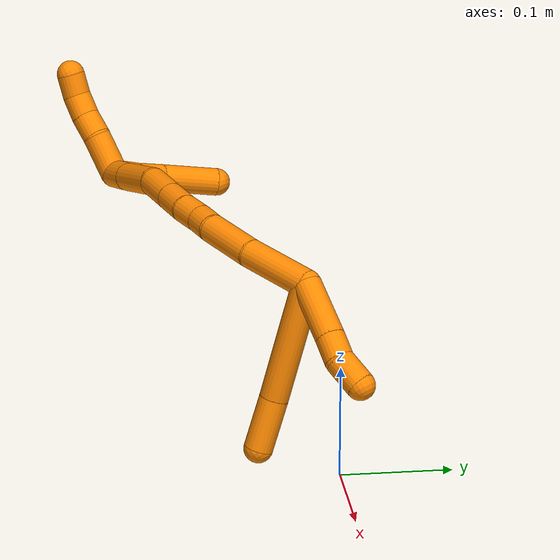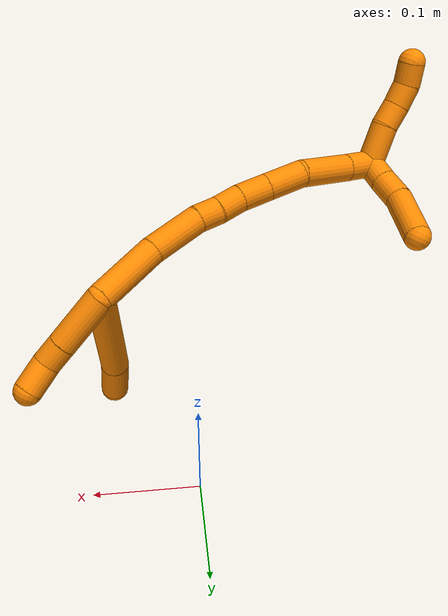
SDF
<sdf version="1.7">
 <world name="default">
  <model name="19">
   <static>0</static>
   <link name="19">
    <collision name="collision-cylinder-e_1_2_8">
     <pose>-0.026592 -0.031425 -0.031745 2.36127 -0.536967 -1.17924</pose>
     <geometry><cylinder><radius>0.0125</radius><length>0.103968</length></cylinder></geometry>
     <surface>
      <friction><ode><mu>1.16</mu><mu2>1.16</mu2><slip1>0</slip1><slip2>0</slip2></ode></friction>
      <contact><ode><kp>1e+06</kp><kd>1</kd><max_vel>0</max_vel><min_depth>0.001</min_depth></ode></contact>
     </surface>
    </collision>
    <visual name="visual-cylinder-e_1_2_8">
     <pose>-0.026592 -0.031425 -0.031745 2.36127 -0.536967 -1.17924</pose>
     <geometry><cylinder><radius>0.0125</radius><length>0.103968</length></cylinder></geometry>
     <material><ambient>0.996078 0.537255 0 1</ambient></material>
    </visual>
    <collision name="collision-cylinder-e_2_8_6">
     <pose>-0.06249 -0.077982 -0.078123 2.3394 -0.416268 -0.924083</pose>
     <geometry><cylinder><radius>0.0125</radius><length>0.046032</length></cylinder></geometry>
     <surface>
      <friction><ode><mu>1.16</mu><mu2>1.16</mu2><slip1>0</slip1><slip2>0</slip2></ode></friction>
      <contact><ode><kp>1e+06</kp><kd>1</kd><max_vel>0</max_vel><min_depth>0.001</min_depth></ode></contact>
     </surface>
    </collision>
    <visual name="visual-cylinder-e_2_8_6">
     <pose>-0.06249 -0.077982 -0.078123 2.3394 -0.416268 -0.924083</pose>
     <geometry><cylinder><radius>0.0125</radius><length>0.046032</length></cylinder></geometry>
     <material><ambient>0.996078 0.537255 0 1</ambient></material>
    </visual>
    <collision name="collision-cylinder-e_1_2_9">
     <pose>0.005661 -0.003075 -0.024626 3.01737 0.224253 2.13231</pose>
     <geometry><cylinder><radius>0.0125</radius><length>0.05091</length></cylinder></geometry>
     <surface>
      <friction><ode><mu>1.16</mu><mu2>1.16</mu2><slip1>0</slip1><slip2>0</slip2></ode></friction>
      <contact><ode><kp>1e+06</kp><kd>1</kd><max_vel>0</max_vel><min_depth>0.001</min_depth></ode></contact>
     </surface>
    </collision>
    <visual name="visual-cylinder-e_1_2_9">
     <pose>0.005661 -0.003075 -0.024626 3.01737 0.224253 2.13231</pose>
     <geometry><cylinder><radius>0.0125</radius><length>0.05091</length></cylinder></geometry>
     <material><ambient>0.996078 0.537255 0 1</ambient></material>
    </visual>
    <collision name="collision-cylinder-e_2_9_10">
     <pose>0.013673 -0.007772 -0.059679 2.98723 0.219288 1.91677</pose>
     <geometry><cylinder><radius>0.0125</radius><length>0.021621</length></cylinder></geometry>
     <surface>
      <friction><ode><mu>1.16</mu><mu2>1.16</mu2><slip1>0</slip1><slip2>0</slip2></ode></friction>
      <contact><ode><kp>1e+06</kp><kd>1</kd><max_vel>0</max_vel><min_depth>0.001</min_depth></ode></contact>
     </surface>
    </collision>
    <visual name="visual-cylinder-e_2_9_10">
     <pose>0.013673 -0.007772 -0.059679 2.98723 0.219288 1.91677</pose>
     <geometry><cylinder><radius>0.0125</radius><length>0.021621</length></cylinder></geometry>
     <material><ambient>0.996078 0.537255 0 1</ambient></material>
    </visual>
    <collision name="collision-cylinder-e_3_10_5">
     <pose>0.018812 -0.007293 -0.083388 -2.9847 0.204359 -1.83349</pose>
     <geometry><cylinder><radius>0.0125</radius><length>0.027469</length></cylinder></geometry>
     <surface>
      <friction><ode><mu>1.16</mu><mu2>1.16</mu2><slip1>0</slip1><slip2>0</slip2></ode></friction>
      <contact><ode><kp>1e+06</kp><kd>1</kd><max_vel>0</max_vel><min_depth>0.001</min_depth></ode></contact>
     </surface>
    </collision>
    <visual name="visual-cylinder-e_3_10_5">
     <pose>0.018812 -0.007293 -0.083388 -2.9847 0.204359 -1.83349</pose>
     <geometry><cylinder><radius>0.0125</radius><length>0.027469</length></cylinder></geometry>
     <material><ambient>0.996078 0.537255 0 1</ambient></material>
    </visual>
    <collision name="collision-cylinder-e_1_2_11">
     <pose>-0.014686 -0.012222 0.024975 0.455095 -0.485929 -0.114663</pose>
     <geometry><cylinder><radius>0.0125</radius><length>0.06289</length></cylinder></geometry>
     <surface>
      <friction><ode><mu>1.16</mu><mu2>1.16</mu2><slip1>0</slip1><slip2>0</slip2></ode></friction>
      <contact><ode><kp>1e+06</kp><kd>1</kd><max_vel>0</max_vel><min_depth>0.001</min_depth></ode></contact>
     </surface>
    </collision>
    <visual name="visual-cylinder-e_1_2_11">
     <pose>-0.014686 -0.012222 0.024975 0.455095 -0.485929 -0.114663</pose>
     <geometry><cylinder><radius>0.0125</radius><length>0.06289</length></cylinder></geometry>
     <material><ambient>0.996078 0.537255 0 1</ambient></material>
    </visual>
    <collision name="collision-cylinder-e_2_11_12">
     <pose>-0.043702 -0.031589 0.069519 0.350089 -0.602528 -0.109795</pose>
     <geometry><cylinder><radius>0.0125</radius><length>0.050572</length></cylinder></geometry>
     <surface>
      <friction><ode><mu>1.16</mu><mu2>1.16</mu2><slip1>0</slip1><slip2>0</slip2></ode></friction>
      <contact><ode><kp>1e+06</kp><kd>1</kd><max_vel>0</max_vel><min_depth>0.001</min_depth></ode></contact>
     </surface>
    </collision>
    <visual name="visual-cylinder-e_2_11_12">
     <pose>-0.043702 -0.031589 0.069519 0.350089 -0.602528 -0.109795</pose>
     <geometry><cylinder><radius>0.0125</radius><length>0.050572</length></cylinder></geometry>
     <material><ambient>0.996078 0.537255 0 1</ambient></material>
    </visual>
    <collision name="collision-cylinder-e_3_12_13">
     <pose>-0.065488 -0.040204 0.096392 0.198667 -0.785863 -0.082569</pose>
     <geometry><cylinder><radius>0.0125</radius><length>0.02108</length></cylinder></geometry>
     <surface>
      <friction><ode><mu>1.16</mu><mu2>1.16</mu2><slip1>0</slip1><slip2>0</slip2></ode></friction>
      <contact><ode><kp>1e+06</kp><kd>1</kd><max_vel>0</max_vel><min_depth>0.001</min_depth></ode></contact>
     </surface>
    </collision>
    <visual name="visual-cylinder-e_3_12_13">
     <pose>-0.065488 -0.040204 0.096392 0.198667 -0.785863 -0.082569</pose>
     <geometry><cylinder><radius>0.0125</radius><length>0.02108</length></cylinder></geometry>
     <material><ambient>0.996078 0.537255 0 1</ambient></material>
    </visual>
    <collision name="collision-cylinder-e_4_13_14">
     <pose>-0.080312 -0.044435 0.112257 0.311832 -0.686182 -0.112186</pose>
     <geometry><cylinder><radius>0.0125</radius><length>0.023257</length></cylinder></geometry>
     <surface>
      <friction><ode><mu>1.16</mu><mu2>1.16</mu2><slip1>0</slip1><slip2>0</slip2></ode></friction>
      <contact><ode><kp>1e+06</kp><kd>1</kd><max_vel>0</max_vel><min_depth>0.001</min_depth></ode></contact>
     </surface>
    </collision>
    <visual name="visual-cylinder-e_4_13_14">
     <pose>-0.080312 -0.044435 0.112257 0.311832 -0.686182 -0.112186</pose>
     <geometry><cylinder><radius>0.0125</radius><length>0.023257</length></cylinder></geometry>
     <material><ambient>0.996078 0.537255 0 1</ambient></material>
    </visual>
    <collision name="collision-cylinder-e_5_14_15">
     <pose>-0.097689 -0.048852 0.130353 0.17213 -0.802327 -0.07316</pose>
     <geometry><cylinder><radius>0.0125</radius><length>0.027843</length></cylinder></geometry>
     <surface>
      <friction><ode><mu>1.16</mu><mu2>1.16</mu2><slip1>0</slip1><slip2>0</slip2></ode></friction>
      <contact><ode><kp>1e+06</kp><kd>1</kd><max_vel>0</max_vel><min_depth>0.001</min_depth></ode></contact>
     </surface>
    </collision>
    <visual name="visual-cylinder-e_5_14_15">
     <pose>-0.097689 -0.048852 0.130353 0.17213 -0.802327 -0.07316</pose>
     <geometry><cylinder><radius>0.0125</radius><length>0.027843</length></cylinder></geometry>
     <material><ambient>0.996078 0.537255 0 1</ambient></material>
    </visual>
    <collision name="collision-cylinder-e_6_15_16">
     <pose>-0.120704 -0.05255 0.152198 0.164258 -0.80603 -0.070161</pose>
     <geometry><cylinder><radius>0.0125</radius><length>0.036049</length></cylinder></geometry>
     <surface>
      <friction><ode><mu>1.16</mu><mu2>1.16</mu2><slip1>0</slip1><slip2>0</slip2></ode></friction>
      <contact><ode><kp>1e+06</kp><kd>1</kd><max_vel>0</max_vel><min_depth>0.001</min_depth></ode></contact>
     </surface>
    </collision>
    <visual name="visual-cylinder-e_6_15_16">
     <pose>-0.120704 -0.05255 0.152198 0.164258 -0.80603 -0.070161</pose>
     <geometry><cylinder><radius>0.0125</radius><length>0.036049</length></cylinder></geometry>
     <material><ambient>0.996078 0.537255 0 1</ambient></material>
    </visual>
    <collision name="collision-cylinder-e_7_16_17">
     <pose>-0.154875 -0.061061 0.176146 0.50743 -1.0093 -0.284518</pose>
     <geometry><cylinder><radius>0.0125</radius><length>0.05001</length></cylinder></geometry>
     <surface>
      <friction><ode><mu>1.16</mu><mu2>1.16</mu2><slip1>0</slip1><slip2>0</slip2></ode></friction>
      <contact><ode><kp>1e+06</kp><kd>1</kd><max_vel>0</max_vel><min_depth>0.001</min_depth></ode></contact>
     </surface>
    </collision>
    <visual name="visual-cylinder-e_7_16_17">
     <pose>-0.154875 -0.061061 0.176146 0.50743 -1.0093 -0.284518</pose>
     <geometry><cylinder><radius>0.0125</radius><length>0.05001</length></cylinder></geometry>
     <material><ambient>0.996078 0.537255 0 1</ambient></material>
    </visual>
    <collision name="collision-cylinder-e_8_17_1">
     <pose>-0.18788 -0.070985 0.194719 0.462029 -0.991259 -0.252975</pose>
     <geometry><cylinder><radius>0.0125</radius><length>0.028298</length></cylinder></geometry>
     <surface>
      <friction><ode><mu>1.16</mu><mu2>1.16</mu2><slip1>0</slip1><slip2>0</slip2></ode></friction>
      <contact><ode><kp>1e+06</kp><kd>1</kd><max_vel>0</max_vel><min_depth>0.001</min_depth></ode></contact>
     </surface>
    </collision>
    <visual name="visual-cylinder-e_8_17_1">
     <pose>-0.18788 -0.070985 0.194719 0.462029 -0.991259 -0.252975</pose>
     <geometry><cylinder><radius>0.0125</radius><length>0.028298</length></cylinder></geometry>
     <material><ambient>0.996078 0.537255 0 1</ambient></material>
    </visual>
    <collision name="collision-cylinder-e_1_1_18">
     <pose>-0.197367 -0.073618 0.220121 -0.044391 0.126565 -0.002813</pose>
     <geometry><cylinder><radius>0.0125</radius><length>0.037267</length></cylinder></geometry>
     <surface>
      <friction><ode><mu>1.16</mu><mu2>1.16</mu2><slip1>0</slip1><slip2>0</slip2></ode></friction>
      <contact><ode><kp>1e+06</kp><kd>1</kd><max_vel>0</max_vel><min_depth>0.001</min_depth></ode></contact>
     </surface>
    </collision>
    <visual name="visual-cylinder-e_1_1_18">
     <pose>-0.197367 -0.073618 0.220121 -0.044391 0.126565 -0.002813</pose>
     <geometry><cylinder><radius>0.0125</radius><length>0.037267</length></cylinder></geometry>
     <material><ambient>0.996078 0.537255 0 1</ambient></material>
    </visual>
    <collision name="collision-cylinder-e_2_18_19">
     <pose>-0.195882 -0.072797 0.249147 -0.000133 -0.081885 5e-06</pose>
     <geometry><cylinder><radius>0.0125</radius><length>0.021191</length></cylinder></geometry>
     <surface>
      <friction><ode><mu>1.16</mu><mu2>1.16</mu2><slip1>0</slip1><slip2>0</slip2></ode></friction>
      <contact><ode><kp>1e+06</kp><kd>1</kd><max_vel>0</max_vel><min_depth>0.001</min_depth></ode></contact>
     </surface>
    </collision>
    <visual name="visual-cylinder-e_2_18_19">
     <pose>-0.195882 -0.072797 0.249147 -0.000133 -0.081885 5e-06</pose>
     <geometry><cylinder><radius>0.0125</radius><length>0.021191</length></cylinder></geometry>
     <material><ambient>0.996078 0.537255 0 1</ambient></material>
    </visual>
    <collision name="collision-cylinder-e_3_19_20">
     <pose>-0.196348 -0.071788 0.270182 -0.095843 0.037984 -0.001822</pose>
     <geometry><cylinder><radius>0.0125</radius><length>0.021061</length></cylinder></geometry>
     <surface>
      <friction><ode><mu>1.16</mu><mu2>1.16</mu2><slip1>0</slip1><slip2>0</slip2></ode></friction>
      <contact><ode><kp>1e+06</kp><kd>1</kd><max_vel>0</max_vel><min_depth>0.001</min_depth></ode></contact>
     </surface>
    </collision>
    <visual name="visual-cylinder-e_3_19_20">
     <pose>-0.196348 -0.071788 0.270182 -0.095843 0.037984 -0.001822</pose>
     <geometry><cylinder><radius>0.0125</radius><length>0.021061</length></cylinder></geometry>
     <material><ambient>0.996078 0.537255 0 1</ambient></material>
    </visual>
    <collision name="collision-cylinder-e_4_20_4">
     <pose>-0.192381 -0.068834 0.290056 -0.204338 0.355873 -0.036872</pose>
     <geometry><cylinder><radius>0.0125</radius><length>0.020481</length></cylinder></geometry>
     <surface>
      <friction><ode><mu>1.16</mu><mu2>1.16</mu2><slip1>0</slip1><slip2>0</slip2></ode></friction>
      <contact><ode><kp>1e+06</kp><kd>1</kd><max_vel>0</max_vel><min_depth>0.001</min_depth></ode></contact>
     </surface>
    </collision>
    <visual name="visual-cylinder-e_4_20_4">
     <pose>-0.192381 -0.068834 0.290056 -0.204338 0.355873 -0.036872</pose>
     <geometry><cylinder><radius>0.0125</radius><length>0.020481</length></cylinder></geometry>
     <material><ambient>0.996078 0.537255 0 1</ambient></material>
    </visual>
    <collision name="collision-cylinder-e_1_1_21">
     <pose>-0.205564 -0.065399 0.196766 -2.06662 -0.517132 0.835303</pose>
     <geometry><cylinder><radius>0.0125</radius><length>0.023646</length></cylinder></geometry>
     <surface>
      <friction><ode><mu>1.16</mu><mu2>1.16</mu2><slip1>0</slip1><slip2>0</slip2></ode></friction>
      <contact><ode><kp>1e+06</kp><kd>1</kd><max_vel>0</max_vel><min_depth>0.001</min_depth></ode></contact>
     </surface>
    </collision>
    <visual name="visual-cylinder-e_1_1_21">
     <pose>-0.205564 -0.065399 0.196766 -2.06662 -0.517132 0.835303</pose>
     <geometry><cylinder><radius>0.0125</radius><length>0.023646</length></cylinder></geometry>
     <material><ambient>0.996078 0.537255 0 1</ambient></material>
    </visual>
    <collision name="collision-cylinder-e_2_21_22">
     <pose>-0.21736 -0.046076 0.187242 -1.99419 -0.485432 0.731805</pose>
     <geometry><cylinder><radius>0.0125</radius><length>0.025508</length></cylinder></geometry>
     <surface>
      <friction><ode><mu>1.16</mu><mu2>1.16</mu2><slip1>0</slip1><slip2>0</slip2></ode></friction>
      <contact><ode><kp>1e+06</kp><kd>1</kd><max_vel>0</max_vel><min_depth>0.001</min_depth></ode></contact>
     </surface>
    </collision>
    <visual name="visual-cylinder-e_2_21_22">
     <pose>-0.21736 -0.046076 0.187242 -1.99419 -0.485432 0.731805</pose>
     <geometry><cylinder><radius>0.0125</radius><length>0.025508</length></cylinder></geometry>
     <material><ambient>0.996078 0.537255 0 1</ambient></material>
    </visual>
    <collision name="collision-cylinder-e_3_22_3">
     <pose>-0.228588 -0.014131 0.170387 -2.08444 -0.209101 0.355564</pose>
     <geometry><cylinder><radius>0.0125</radius><length>0.050846</length></cylinder></geometry>
     <surface>
      <friction><ode><mu>1.16</mu><mu2>1.16</mu2><slip1>0</slip1><slip2>0</slip2></ode></friction>
      <contact><ode><kp>1e+06</kp><kd>1</kd><max_vel>0</max_vel><min_depth>0.001</min_depth></ode></contact>
     </surface>
    </collision>
    <visual name="visual-cylinder-e_3_22_3">
     <pose>-0.228588 -0.014131 0.170387 -2.08444 -0.209101 0.355564</pose>
     <geometry><cylinder><radius>0.0125</radius><length>0.050846</length></cylinder></geometry>
     <material><ambient>0.996078 0.537255 0 1</ambient></material>
    </visual>
    <collision name="collision-sphere-3">
     <pose>-0.233866 0.007529 0.158168 0 -0 0</pose>
     <geometry><sphere><radius>0.0125</radius></sphere></geometry>
     <surface>
      <friction><ode><mu>1.16</mu><mu2>1.16</mu2><slip1>0</slip1><slip2>0</slip2></ode></friction>
      <contact><ode><kp>1e+06</kp><kd>1</kd><max_vel>0</max_vel><min_depth>0.001</min_depth></ode></contact>
     </surface>
    </collision>
    <visual name="visual-sphere-3">
     <pose>-0.233866 0.007529 0.158168 0 -0 0</pose>
     <geometry><sphere><radius>0.0125</radius></sphere></geometry>
     <material><ambient>0.996078 0.537255 0 1</ambient></material>
    </visual>
    <collision name="collision-sphere-22">
     <pose>-0.223311 -0.035791 0.182607 0 -0 0</pose>
     <geometry><sphere><radius>0.0125</radius></sphere></geometry>
     <surface>
      <friction><ode><mu>1.16</mu><mu2>1.16</mu2><slip1>0</slip1><slip2>0</slip2></ode></friction>
      <contact><ode><kp>1e+06</kp><kd>1</kd><max_vel>0</max_vel><min_depth>0.001</min_depth></ode></contact>
     </surface>
    </collision>
    <visual name="visual-sphere-22">
     <pose>-0.223311 -0.035791 0.182607 0 -0 0</pose>
     <geometry><sphere><radius>0.0125</radius></sphere></geometry>
     <material><ambient>0.996078 0.537255 0 1</ambient></material>
    </visual>
    <collision name="collision-sphere-21">
     <pose>-0.211409 -0.05636 0.191877 0 -0 0</pose>
     <geometry><sphere><radius>0.0125</radius></sphere></geometry>
     <surface>
      <friction><ode><mu>1.16</mu><mu2>1.16</mu2><slip1>0</slip1><slip2>0</slip2></ode></friction>
      <contact><ode><kp>1e+06</kp><kd>1</kd><max_vel>0</max_vel><min_depth>0.001</min_depth></ode></contact>
     </surface>
    </collision>
    <visual name="visual-sphere-21">
     <pose>-0.211409 -0.05636 0.191877 0 -0 0</pose>
     <geometry><sphere><radius>0.0125</radius></sphere></geometry>
     <material><ambient>0.996078 0.537255 0 1</ambient></material>
    </visual>
    <collision name="collision-sphere-4">
     <pose>-0.188813 -0.066886 0.299455 0 -0 0</pose>
     <geometry><sphere><radius>0.0125</radius></sphere></geometry>
     <surface>
      <friction><ode><mu>1.16</mu><mu2>1.16</mu2><slip1>0</slip1><slip2>0</slip2></ode></friction>
      <contact><ode><kp>1e+06</kp><kd>1</kd><max_vel>0</max_vel><min_depth>0.001</min_depth></ode></contact>
     </surface>
    </collision>
    <visual name="visual-sphere-4">
     <pose>-0.188813 -0.066886 0.299455 0 -0 0</pose>
     <geometry><sphere><radius>0.0125</radius></sphere></geometry>
     <material><ambient>0.996078 0.537255 0 1</ambient></material>
    </visual>
    <collision name="collision-sphere-20">
     <pose>-0.195948 -0.070781 0.280657 0 -0 0</pose>
     <geometry><sphere><radius>0.0125</radius></sphere></geometry>
     <surface>
      <friction><ode><mu>1.16</mu><mu2>1.16</mu2><slip1>0</slip1><slip2>0</slip2></ode></friction>
      <contact><ode><kp>1e+06</kp><kd>1</kd><max_vel>0</max_vel><min_depth>0.001</min_depth></ode></contact>
     </surface>
    </collision>
    <visual name="visual-sphere-20">
     <pose>-0.195948 -0.070781 0.280657 0 -0 0</pose>
     <geometry><sphere><radius>0.0125</radius></sphere></geometry>
     <material><ambient>0.996078 0.537255 0 1</ambient></material>
    </visual>
    <collision name="collision-sphere-5">
     <pose>0.021599 -0.005192 -0.096672 0 -0 0</pose>
     <geometry><sphere><radius>0.0125</radius></sphere></geometry>
     <surface>
      <friction><ode><mu>1.16</mu><mu2>1.16</mu2><slip1>0</slip1><slip2>0</slip2></ode></friction>
      <contact><ode><kp>1e+06</kp><kd>1</kd><max_vel>0</max_vel><min_depth>0.001</min_depth></ode></contact>
     </surface>
    </collision>
    <visual name="visual-sphere-5">
     <pose>0.021599 -0.005192 -0.096672 0 -0 0</pose>
     <geometry><sphere><radius>0.0125</radius></sphere></geometry>
     <material><ambient>0.996078 0.537255 0 1</ambient></material>
    </visual>
    <collision name="collision-sphere-10">
     <pose>0.016024 -0.009395 -0.070105 0 -0 0</pose>
     <geometry><sphere><radius>0.0125</radius></sphere></geometry>
     <surface>
      <friction><ode><mu>1.16</mu><mu2>1.16</mu2><slip1>0</slip1><slip2>0</slip2></ode></friction>
      <contact><ode><kp>1e+06</kp><kd>1</kd><max_vel>0</max_vel><min_depth>0.001</min_depth></ode></contact>
     </surface>
    </collision>
    <visual name="visual-sphere-10">
     <pose>0.016024 -0.009395 -0.070105 0 -0 0</pose>
     <geometry><sphere><radius>0.0125</radius></sphere></geometry>
     <material><ambient>0.996078 0.537255 0 1</ambient></material>
    </visual>
    <collision name="collision-sphere-6">
     <pose>-0.071796 -0.093115 -0.092755 0 -0 0</pose>
     <geometry><sphere><radius>0.0125</radius></sphere></geometry>
     <surface>
      <friction><ode><mu>1.16</mu><mu2>1.16</mu2><slip1>0</slip1><slip2>0</slip2></ode></friction>
      <contact><ode><kp>1e+06</kp><kd>1</kd><max_vel>0</max_vel><min_depth>0.001</min_depth></ode></contact>
     </surface>
    </collision>
    <visual name="visual-sphere-6">
     <pose>-0.071796 -0.093115 -0.092755 0 -0 0</pose>
     <geometry><sphere><radius>0.0125</radius></sphere></geometry>
     <material><ambient>0.996078 0.537255 0 1</ambient></material>
    </visual>
    <collision name="collision-sphere-9">
     <pose>0.011321 -0.00615 -0.049252 0 -0 0</pose>
     <geometry><sphere><radius>0.0125</radius></sphere></geometry>
     <surface>
      <friction><ode><mu>1.16</mu><mu2>1.16</mu2><slip1>0</slip1><slip2>0</slip2></ode></friction>
      <contact><ode><kp>1e+06</kp><kd>1</kd><max_vel>0</max_vel><min_depth>0.001</min_depth></ode></contact>
     </surface>
    </collision>
    <visual name="visual-sphere-9">
     <pose>0.011321 -0.00615 -0.049252 0 -0 0</pose>
     <geometry><sphere><radius>0.0125</radius></sphere></geometry>
     <material><ambient>0.996078 0.537255 0 1</ambient></material>
    </visual>
    <collision name="collision-sphere-2">
     <geometry><sphere><radius>0.0125</radius></sphere></geometry>
     <surface>
      <friction><ode><mu>1.16</mu><mu2>1.16</mu2><slip1>0</slip1><slip2>0</slip2></ode></friction>
      <contact><ode><kp>1e+06</kp><kd>1</kd><max_vel>0</max_vel><min_depth>0.001</min_depth></ode></contact>
     </surface>
    </collision>
    <visual name="visual-sphere-2">
     <geometry><sphere><radius>0.0125</radius></sphere></geometry>
     <material><ambient>0.996078 0.537255 0 1</ambient></material>
    </visual>
    <collision name="collision-sphere-19">
     <pose>-0.196748 -0.072795 0.259707 0 -0 0</pose>
     <geometry><sphere><radius>0.0125</radius></sphere></geometry>
     <surface>
      <friction><ode><mu>1.16</mu><mu2>1.16</mu2><slip1>0</slip1><slip2>0</slip2></ode></friction>
      <contact><ode><kp>1e+06</kp><kd>1</kd><max_vel>0</max_vel><min_depth>0.001</min_depth></ode></contact>
     </surface>
    </collision>
    <visual name="visual-sphere-19">
     <pose>-0.196748 -0.072795 0.259707 0 -0 0</pose>
     <geometry><sphere><radius>0.0125</radius></sphere></geometry>
     <material><ambient>0.996078 0.537255 0 1</ambient></material>
    </visual>
    <collision name="collision-sphere-8">
     <pose>-0.053183 -0.062849 -0.06349 0 -0 0</pose>
     <geometry><sphere><radius>0.0125</radius></sphere></geometry>
     <surface>
      <friction><ode><mu>1.16</mu><mu2>1.16</mu2><slip1>0</slip1><slip2>0</slip2></ode></friction>
      <contact><ode><kp>1e+06</kp><kd>1</kd><max_vel>0</max_vel><min_depth>0.001</min_depth></ode></contact>
     </surface>
    </collision>
    <visual name="visual-sphere-8">
     <pose>-0.053183 -0.062849 -0.06349 0 -0 0</pose>
     <geometry><sphere><radius>0.0125</radius></sphere></geometry>
     <material><ambient>0.996078 0.537255 0 1</ambient></material>
    </visual>
    <collision name="collision-sphere-11">
     <pose>-0.029371 -0.024443 0.04995 0 -0 0</pose>
     <geometry><sphere><radius>0.0125</radius></sphere></geometry>
     <surface>
      <friction><ode><mu>1.16</mu><mu2>1.16</mu2><slip1>0</slip1><slip2>0</slip2></ode></friction>
      <contact><ode><kp>1e+06</kp><kd>1</kd><max_vel>0</max_vel><min_depth>0.001</min_depth></ode></contact>
     </surface>
    </collision>
    <visual name="visual-sphere-11">
     <pose>-0.029371 -0.024443 0.04995 0 -0 0</pose>
     <geometry><sphere><radius>0.0125</radius></sphere></geometry>
     <material><ambient>0.996078 0.537255 0 1</ambient></material>
    </visual>
    <collision name="collision-sphere-12">
     <pose>-0.058032 -0.038734 0.089089 0 -0 0</pose>
     <geometry><sphere><radius>0.0125</radius></sphere></geometry>
     <surface>
      <friction><ode><mu>1.16</mu><mu2>1.16</mu2><slip1>0</slip1><slip2>0</slip2></ode></friction>
      <contact><ode><kp>1e+06</kp><kd>1</kd><max_vel>0</max_vel><min_depth>0.001</min_depth></ode></contact>
     </surface>
    </collision>
    <visual name="visual-sphere-12">
     <pose>-0.058032 -0.038734 0.089089 0 -0 0</pose>
     <geometry><sphere><radius>0.0125</radius></sphere></geometry>
     <material><ambient>0.996078 0.537255 0 1</ambient></material>
    </visual>
    <collision name="collision-sphere-13">
     <pose>-0.072944 -0.041674 0.103695 0 -0 0</pose>
     <geometry><sphere><radius>0.0125</radius></sphere></geometry>
     <surface>
      <friction><ode><mu>1.16</mu><mu2>1.16</mu2><slip1>0</slip1><slip2>0</slip2></ode></friction>
      <contact><ode><kp>1e+06</kp><kd>1</kd><max_vel>0</max_vel><min_depth>0.001</min_depth></ode></contact>
     </surface>
    </collision>
    <visual name="visual-sphere-13">
     <pose>-0.072944 -0.041674 0.103695 0 -0 0</pose>
     <geometry><sphere><radius>0.0125</radius></sphere></geometry>
     <material><ambient>0.996078 0.537255 0 1</ambient></material>
    </visual>
    <collision name="collision-sphere-14">
     <pose>-0.08768 -0.047195 0.12082 0 -0 0</pose>
     <geometry><sphere><radius>0.0125</radius></sphere></geometry>
     <surface>
      <friction><ode><mu>1.16</mu><mu2>1.16</mu2><slip1>0</slip1><slip2>0</slip2></ode></friction>
      <contact><ode><kp>1e+06</kp><kd>1</kd><max_vel>0</max_vel><min_depth>0.001</min_depth></ode></contact>
     </surface>
    </collision>
    <visual name="visual-sphere-14">
     <pose>-0.08768 -0.047195 0.12082 0 -0 0</pose>
     <geometry><sphere><radius>0.0125</radius></sphere></geometry>
     <material><ambient>0.996078 0.537255 0 1</ambient></material>
    </visual>
    <collision name="collision-sphere-15">
     <pose>-0.107699 -0.05051 0.139886 0 -0 0</pose>
     <geometry><sphere><radius>0.0125</radius></sphere></geometry>
     <surface>
      <friction><ode><mu>1.16</mu><mu2>1.16</mu2><slip1>0</slip1><slip2>0</slip2></ode></friction>
      <contact><ode><kp>1e+06</kp><kd>1</kd><max_vel>0</max_vel><min_depth>0.001</min_depth></ode></contact>
     </surface>
    </collision>
    <visual name="visual-sphere-15">
     <pose>-0.107699 -0.05051 0.139886 0 -0 0</pose>
     <geometry><sphere><radius>0.0125</radius></sphere></geometry>
     <material><ambient>0.996078 0.537255 0 1</ambient></material>
    </visual>
    <collision name="collision-sphere-16">
     <pose>-0.13371 -0.054591 0.16451 0 -0 0</pose>
     <geometry><sphere><radius>0.0125</radius></sphere></geometry>
     <surface>
      <friction><ode><mu>1.16</mu><mu2>1.16</mu2><slip1>0</slip1><slip2>0</slip2></ode></friction>
      <contact><ode><kp>1e+06</kp><kd>1</kd><max_vel>0</max_vel><min_depth>0.001</min_depth></ode></contact>
     </surface>
    </collision>
    <visual name="visual-sphere-16">
     <pose>-0.13371 -0.054591 0.16451 0 -0 0</pose>
     <geometry><sphere><radius>0.0125</radius></sphere></geometry>
     <material><ambient>0.996078 0.537255 0 1</ambient></material>
    </visual>
    <collision name="collision-sphere-17">
     <pose>-0.176041 -0.067531 0.187783 0 -0 0</pose>
     <geometry><sphere><radius>0.0125</radius></sphere></geometry>
     <surface>
      <friction><ode><mu>1.16</mu><mu2>1.16</mu2><slip1>0</slip1><slip2>0</slip2></ode></friction>
      <contact><ode><kp>1e+06</kp><kd>1</kd><max_vel>0</max_vel><min_depth>0.001</min_depth></ode></contact>
     </surface>
    </collision>
    <visual name="visual-sphere-17">
     <pose>-0.176041 -0.067531 0.187783 0 -0 0</pose>
     <geometry><sphere><radius>0.0125</radius></sphere></geometry>
     <material><ambient>0.996078 0.537255 0 1</ambient></material>
    </visual>
    <collision name="collision-sphere-1">
     <pose>-0.199719 -0.074439 0.201655 0 -0 0</pose>
     <geometry><sphere><radius>0.0125</radius></sphere></geometry>
     <surface>
      <friction><ode><mu>1.16</mu><mu2>1.16</mu2><slip1>0</slip1><slip2>0</slip2></ode></friction>
      <contact><ode><kp>1e+06</kp><kd>1</kd><max_vel>0</max_vel><min_depth>0.001</min_depth></ode></contact>
     </surface>
    </collision>
    <visual name="visual-sphere-1">
     <pose>-0.199719 -0.074439 0.201655 0 -0 0</pose>
     <geometry><sphere><radius>0.0125</radius></sphere></geometry>
     <material><ambient>0.996078 0.537255 0 1</ambient></material>
    </visual>
    <collision name="collision-sphere-18">
     <pose>-0.195015 -0.072798 0.238587 0 -0 0</pose>
     <geometry><sphere><radius>0.0125</radius></sphere></geometry>
     <surface>
      <friction><ode><mu>1.16</mu><mu2>1.16</mu2><slip1>0</slip1><slip2>0</slip2></ode></friction>
      <contact><ode><kp>1e+06</kp><kd>1</kd><max_vel>0</max_vel><min_depth>0.001</min_depth></ode></contact>
     </surface>
    </collision>
    <visual name="visual-sphere-18">
     <pose>-0.195015 -0.072798 0.238587 0 -0 0</pose>
     <geometry><sphere><radius>0.0125</radius></sphere></geometry>
     <material><ambient>0.996078 0.537255 0 1</ambient></material>
    </visual>
    <inertial>
     <pose>-0.096888 -0.040792 0.086186 0 -0 0</pose>
     <mass>0.75</mass>
     <inertia><ixx>6e-06</ixx><ixy>0</ixy><ixz>0</ixz><iyy>-3e-06</iyy><iyz>0</iyz><izz>0.000168</izz></inertia>
    </inertial>
   </link>
   <pose>0.074833 -0.03967 0.203793 0.478427 -0.532602 -0.064813</pose>
  </model>
 </world>
</sdf>
